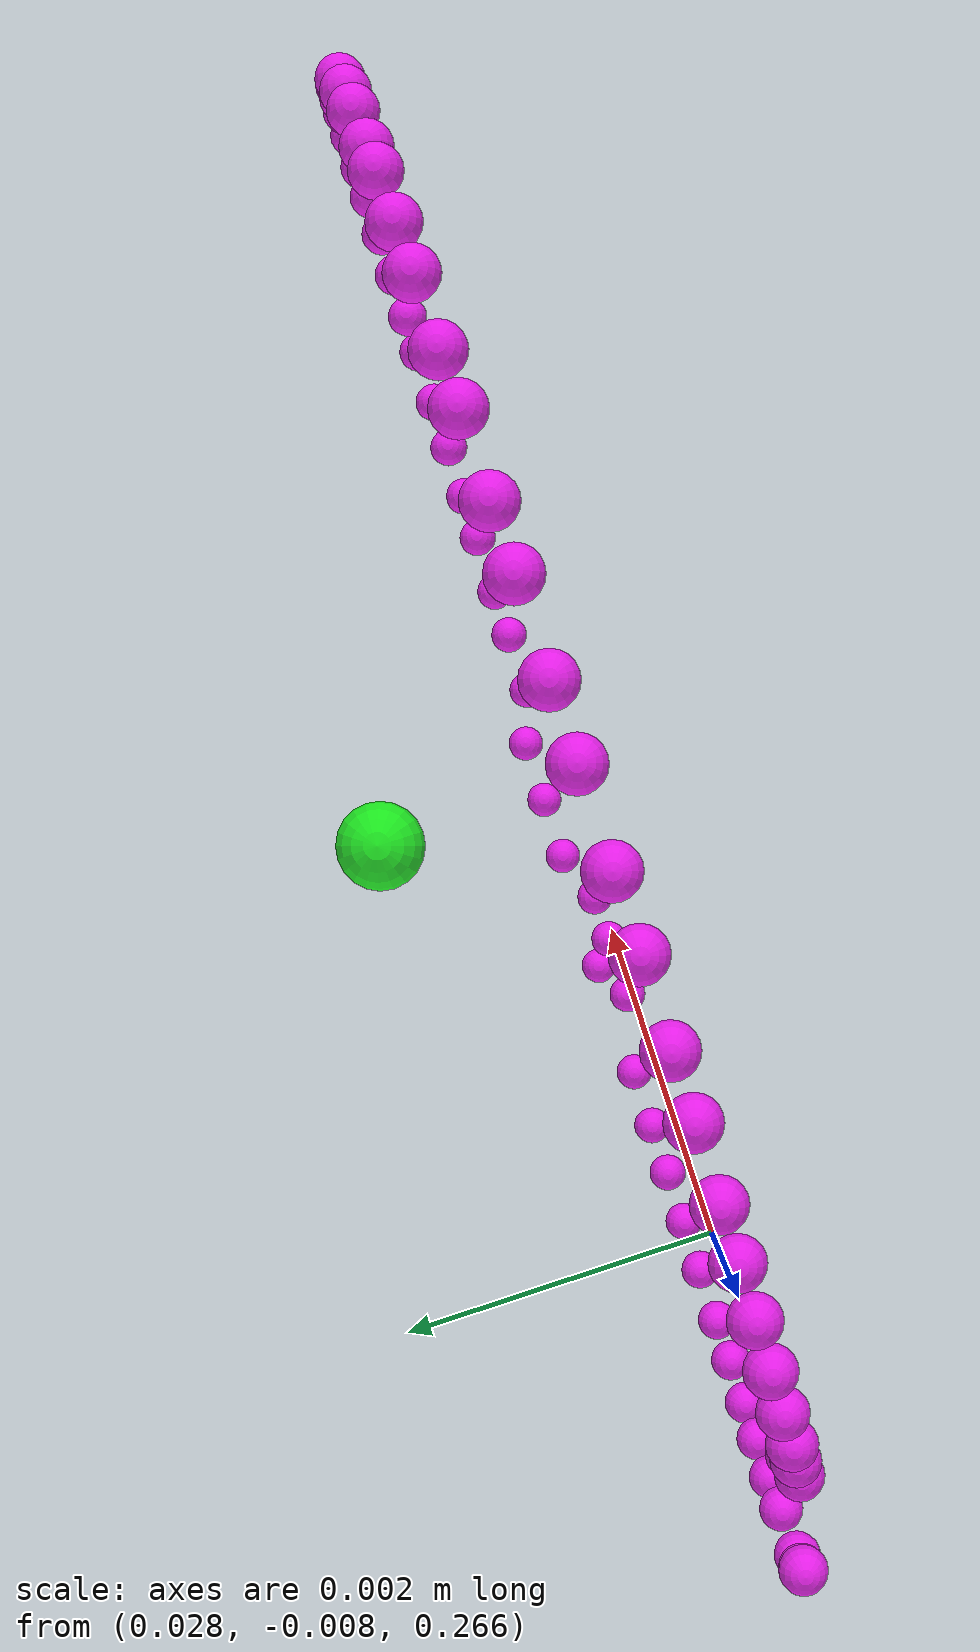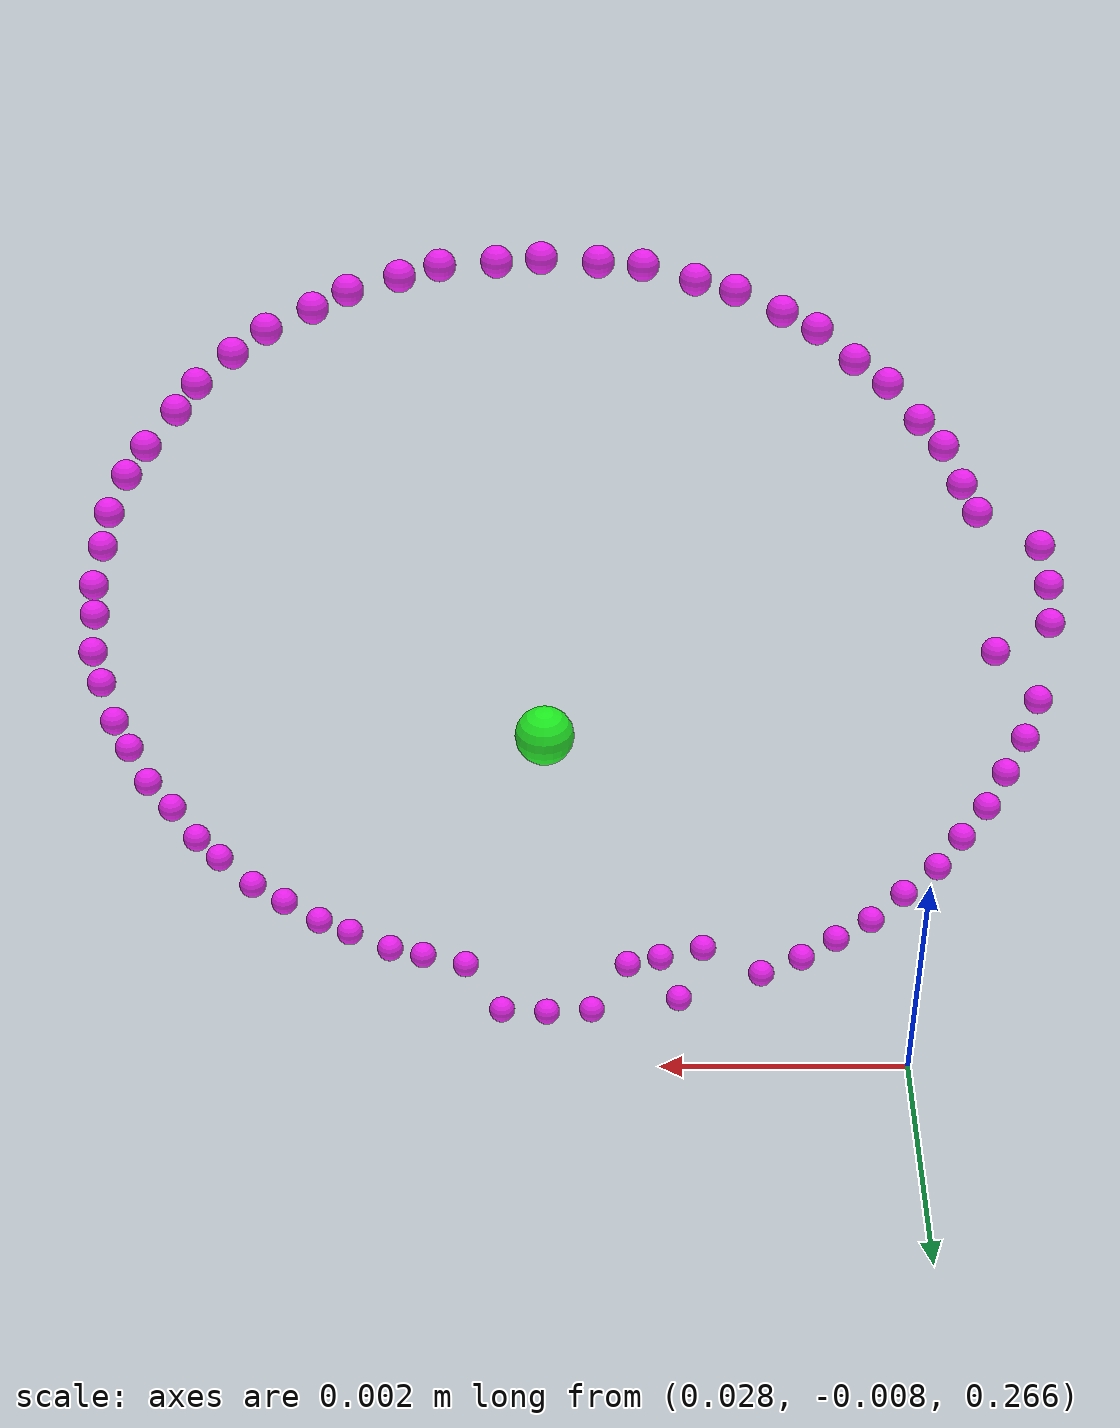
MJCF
<mujoco>
  <worldbody>
    <!-- LENS VISUALIZATION - PROJECTED TRAJECTORY ONLY -->
    <!-- Lens geometric center -->
    <body name="lens_center_marker" pos="0.030893 -0.007080 0.270276">
      <geom name="lens_center_sphere" type="sphere" size="0.0002" rgba="0 1 0 0.8" contype="0" conaffinity="0"/>
    </body>

    <!-- Projected trajectory points (100 points) -->
    <body name="trajectory_point_0" pos="0.030900 -0.007950 0.273375">
      <geom name="traj_marker_0" type="sphere" size="0.0001" rgba="1 0 1 0.8" contype="0" conaffinity="0"/>
    </body>
    <body name="trajectory_point_1" pos="0.031175 -0.007950 0.273350">
      <geom name="traj_marker_1" type="sphere" size="0.0001" rgba="1 0 1 0.8" contype="0" conaffinity="0"/>
    </body>
    <body name="trajectory_point_2" pos="0.031175 -0.007950 0.273350">
      <geom name="traj_marker_2" type="sphere" size="0.0001" rgba="1 0 1 0.8" contype="0" conaffinity="0"/>
    </body>
    <body name="trajectory_point_3" pos="0.031525 -0.007950 0.273325">
      <geom name="traj_marker_3" type="sphere" size="0.0001" rgba="1 0 1 0.8" contype="0" conaffinity="0"/>
    </body>
    <body name="trajectory_point_4" pos="0.031775 -0.007950 0.273250">
      <geom name="traj_marker_4" type="sphere" size="0.0001" rgba="1 0 1 0.8" contype="0" conaffinity="0"/>
    </body>
    <body name="trajectory_point_5" pos="0.031775 -0.007950 0.273250">
      <geom name="traj_marker_5" type="sphere" size="0.0001" rgba="1 0 1 0.8" contype="0" conaffinity="0"/>
    </body>
    <body name="trajectory_point_6" pos="0.032100 -0.007950 0.273150">
      <geom name="traj_marker_6" type="sphere" size="0.0001" rgba="1 0 1 0.8" contype="0" conaffinity="0"/>
    </body>
    <body name="trajectory_point_7" pos="0.032325 -0.007950 0.273025">
      <geom name="traj_marker_7" type="sphere" size="0.0001" rgba="1 0 1 0.8" contype="0" conaffinity="0"/>
    </body>
    <body name="trajectory_point_8" pos="0.032325 -0.007950 0.273025">
      <geom name="traj_marker_8" type="sphere" size="0.0001" rgba="1 0 1 0.8" contype="0" conaffinity="0"/>
    </body>
    <body name="trajectory_point_9" pos="0.032625 -0.007950 0.272875">
      <geom name="traj_marker_9" type="sphere" size="0.0001" rgba="1 0 1 0.8" contype="0" conaffinity="0"/>
    </body>
    <body name="trajectory_point_10" pos="0.032850 -0.007950 0.272700">
      <geom name="traj_marker_10" type="sphere" size="0.0001" rgba="1 0 1 0.8" contype="0" conaffinity="0"/>
    </body>
    <body name="trajectory_point_11" pos="0.032850 -0.007950 0.272700">
      <geom name="traj_marker_11" type="sphere" size="0.0001" rgba="1 0 1 0.8" contype="0" conaffinity="0"/>
    </body>
    <body name="trajectory_point_12" pos="0.033100 -0.007950 0.272475">
      <geom name="traj_marker_12" type="sphere" size="0.0001" rgba="1 0 1 0.8" contype="0" conaffinity="0"/>
    </body>
    <body name="trajectory_point_13" pos="0.033250 -0.007950 0.272275">
      <geom name="traj_marker_13" type="sphere" size="0.0001" rgba="1 0 1 0.8" contype="0" conaffinity="0"/>
    </body>
    <body name="trajectory_point_14" pos="0.033250 -0.007950 0.272275">
      <geom name="traj_marker_14" type="sphere" size="0.0001" rgba="1 0 1 0.8" contype="0" conaffinity="0"/>
    </body>
    <body name="trajectory_point_15" pos="0.033475 -0.007950 0.272000">
      <geom name="traj_marker_15" type="sphere" size="0.0001" rgba="1 0 1 0.8" contype="0" conaffinity="0"/>
    </body>
    <body name="trajectory_point_16" pos="0.033475 -0.007950 0.272000">
      <geom name="traj_marker_16" type="sphere" size="0.0001" rgba="1 0 1 0.8" contype="0" conaffinity="0"/>
    </body>
    <body name="trajectory_point_17" pos="0.033625 -0.007950 0.271775">
      <geom name="traj_marker_17" type="sphere" size="0.0001" rgba="1 0 1 0.8" contype="0" conaffinity="0"/>
    </body>
    <body name="trajectory_point_18" pos="0.033775 -0.007950 0.271475">
      <geom name="traj_marker_18" type="sphere" size="0.0001" rgba="1 0 1 0.8" contype="0" conaffinity="0"/>
    </body>
    <body name="trajectory_point_19" pos="0.033775 -0.007950 0.271475">
      <geom name="traj_marker_19" type="sphere" size="0.0001" rgba="1 0 1 0.8" contype="0" conaffinity="0"/>
    </body>
    <body name="trajectory_point_20" pos="0.033850 -0.007950 0.271200">
      <geom name="traj_marker_20" type="sphere" size="0.0001" rgba="1 0 1 0.8" contype="0" conaffinity="0"/>
    </body>
    <body name="trajectory_point_21" pos="0.033950 -0.007950 0.270875">
      <geom name="traj_marker_21" type="sphere" size="0.0001" rgba="1 0 1 0.8" contype="0" conaffinity="0"/>
    </body>
    <body name="trajectory_point_22" pos="0.033950 -0.007950 0.270875">
      <geom name="traj_marker_22" type="sphere" size="0.0001" rgba="1 0 1 0.8" contype="0" conaffinity="0"/>
    </body>
    <body name="trajectory_point_23" pos="0.033975 -0.007950 0.270625">
      <geom name="traj_marker_23" type="sphere" size="0.0001" rgba="1 0 1 0.8" contype="0" conaffinity="0"/>
    </body>
    <body name="trajectory_point_24" pos="0.034025 -0.007950 0.270300">
      <geom name="traj_marker_24" type="sphere" size="0.0001" rgba="1 0 1 0.8" contype="0" conaffinity="0"/>
    </body>
    <body name="trajectory_point_25" pos="0.034025 -0.007950 0.270300">
      <geom name="traj_marker_25" type="sphere" size="0.0001" rgba="1 0 1 0.8" contype="0" conaffinity="0"/>
    </body>
    <body name="trajectory_point_26" pos="0.034000 -0.007950 0.270025">
      <geom name="traj_marker_26" type="sphere" size="0.0001" rgba="1 0 1 0.8" contype="0" conaffinity="0"/>
    </body>
    <body name="trajectory_point_27" pos="0.033950 -0.007950 0.269675">
      <geom name="traj_marker_27" type="sphere" size="0.0001" rgba="1 0 1 0.8" contype="0" conaffinity="0"/>
    </body>
    <body name="trajectory_point_28" pos="0.033950 -0.007950 0.269675">
      <geom name="traj_marker_28" type="sphere" size="0.0001" rgba="1 0 1 0.8" contype="0" conaffinity="0"/>
    </body>
    <body name="trajectory_point_29" pos="0.033875 -0.007950 0.269425">
      <geom name="traj_marker_29" type="sphere" size="0.0001" rgba="1 0 1 0.8" contype="0" conaffinity="0"/>
    </body>
    <body name="trajectory_point_30" pos="0.033875 -0.007950 0.269425">
      <geom name="traj_marker_30" type="sphere" size="0.0001" rgba="1 0 1 0.8" contype="0" conaffinity="0"/>
    </body>
    <body name="trajectory_point_31" pos="0.033775 -0.007950 0.269100">
      <geom name="traj_marker_31" type="sphere" size="0.0001" rgba="1 0 1 0.8" contype="0" conaffinity="0"/>
    </body>
    <body name="trajectory_point_32" pos="0.033625 -0.007950 0.268850">
      <geom name="traj_marker_32" type="sphere" size="0.0001" rgba="1 0 1 0.8" contype="0" conaffinity="0"/>
    </body>
    <body name="trajectory_point_33" pos="0.033625 -0.007950 0.268850">
      <geom name="traj_marker_33" type="sphere" size="0.0001" rgba="1 0 1 0.8" contype="0" conaffinity="0"/>
    </body>
    <body name="trajectory_point_34" pos="0.033475 -0.007950 0.268550">
      <geom name="traj_marker_34" type="sphere" size="0.0001" rgba="1 0 1 0.8" contype="0" conaffinity="0"/>
    </body>
    <body name="trajectory_point_35" pos="0.033325 -0.007950 0.268350">
      <geom name="traj_marker_35" type="sphere" size="0.0001" rgba="1 0 1 0.8" contype="0" conaffinity="0"/>
    </body>
    <body name="trajectory_point_36" pos="0.033325 -0.007950 0.268350">
      <geom name="traj_marker_36" type="sphere" size="0.0001" rgba="1 0 1 0.8" contype="0" conaffinity="0"/>
    </body>
    <body name="trajectory_point_37" pos="0.033100 -0.007950 0.268075">
      <geom name="traj_marker_37" type="sphere" size="0.0001" rgba="1 0 1 0.8" contype="0" conaffinity="0"/>
    </body>
    <body name="trajectory_point_38" pos="0.033100 -0.007950 0.268075">
      <geom name="traj_marker_38" type="sphere" size="0.0001" rgba="1 0 1 0.8" contype="0" conaffinity="0"/>
    </body>
    <body name="trajectory_point_39" pos="0.032875 -0.007950 0.267900">
      <geom name="traj_marker_39" type="sphere" size="0.0001" rgba="1 0 1 0.8" contype="0" conaffinity="0"/>
    </body>
    <body name="trajectory_point_40" pos="0.032625 -0.007950 0.267700">
      <geom name="traj_marker_40" type="sphere" size="0.0001" rgba="1 0 1 0.8" contype="0" conaffinity="0"/>
    </body>
    <body name="trajectory_point_41" pos="0.032625 -0.007950 0.267700">
      <geom name="traj_marker_41" type="sphere" size="0.0001" rgba="1 0 1 0.8" contype="0" conaffinity="0"/>
    </body>
    <body name="trajectory_point_42" pos="0.032400 -0.007950 0.267575">
      <geom name="traj_marker_42" type="sphere" size="0.0001" rgba="1 0 1 0.8" contype="0" conaffinity="0"/>
    </body>
    <body name="trajectory_point_43" pos="0.032100 -0.007950 0.267400">
      <geom name="traj_marker_43" type="sphere" size="0.0001" rgba="1 0 1 0.8" contype="0" conaffinity="0"/>
    </body>
    <body name="trajectory_point_44" pos="0.032100 -0.007950 0.267400">
      <geom name="traj_marker_44" type="sphere" size="0.0001" rgba="1 0 1 0.8" contype="0" conaffinity="0"/>
    </body>
    <body name="trajectory_point_45" pos="0.031850 -0.007950 0.267325">
      <geom name="traj_marker_45" type="sphere" size="0.0001" rgba="1 0 1 0.8" contype="0" conaffinity="0"/>
    </body>
    <body name="trajectory_point_46" pos="0.031525 -0.007950 0.267225">
      <geom name="traj_marker_46" type="sphere" size="0.0001" rgba="1 0 1 0.8" contype="0" conaffinity="0"/>
    </body>
    <body name="trajectory_point_47" pos="0.031525 -0.007950 0.267225">
      <geom name="traj_marker_47" type="sphere" size="0.0001" rgba="1 0 1 0.8" contype="0" conaffinity="0"/>
    </body>
    <body name="trajectory_point_48" pos="0.031250 -0.007850 0.266825">
      <geom name="traj_marker_48" type="sphere" size="0.0001" rgba="1 0 1 0.8" contype="0" conaffinity="0"/>
    </body>
    <body name="trajectory_point_49" pos="0.031250 -0.007850 0.266825">
      <geom name="traj_marker_49" type="sphere" size="0.0001" rgba="1 0 1 0.8" contype="0" conaffinity="0"/>
    </body>
    <body name="trajectory_point_50" pos="0.030900 -0.007850 0.266800">
      <geom name="traj_marker_50" type="sphere" size="0.0001" rgba="1 0 1 0.8" contype="0" conaffinity="0"/>
    </body>
    <body name="trajectory_point_51" pos="0.030550 -0.007850 0.266825">
      <geom name="traj_marker_51" type="sphere" size="0.0001" rgba="1 0 1 0.8" contype="0" conaffinity="0"/>
    </body>
    <body name="trajectory_point_52" pos="0.030550 -0.007850 0.266825">
      <geom name="traj_marker_52" type="sphere" size="0.0001" rgba="1 0 1 0.8" contype="0" conaffinity="0"/>
    </body>
    <body name="trajectory_point_53" pos="0.030275 -0.007950 0.267225">
      <geom name="traj_marker_53" type="sphere" size="0.0001" rgba="1 0 1 0.8" contype="0" conaffinity="0"/>
    </body>
    <body name="trajectory_point_54" pos="0.030025 -0.007950 0.267300">
      <geom name="traj_marker_54" type="sphere" size="0.0001" rgba="1 0 1 0.8" contype="0" conaffinity="0"/>
    </body>
    <body name="trajectory_point_55" pos="0.029875 -0.007850 0.266950">
      <geom name="traj_marker_55" type="sphere" size="0.0001" rgba="1 0 1 0.8" contype="0" conaffinity="0"/>
    </body>
    <body name="trajectory_point_56" pos="0.029700 -0.007950 0.267400">
      <geom name="traj_marker_56" type="sphere" size="0.0001" rgba="1 0 1 0.8" contype="0" conaffinity="0"/>
    </body>
    <body name="trajectory_point_57" pos="0.029250 -0.007850 0.267225">
      <geom name="traj_marker_57" type="sphere" size="0.0001" rgba="1 0 1 0.8" contype="0" conaffinity="0"/>
    </body>
    <body name="trajectory_point_58" pos="0.029250 -0.007850 0.267225">
      <geom name="traj_marker_58" type="sphere" size="0.0001" rgba="1 0 1 0.8" contype="0" conaffinity="0"/>
    </body>
    <body name="trajectory_point_59" pos="0.028950 -0.007850 0.267400">
      <geom name="traj_marker_59" type="sphere" size="0.0001" rgba="1 0 1 0.8" contype="0" conaffinity="0"/>
    </body>
    <body name="trajectory_point_60" pos="0.028700 -0.007850 0.267600">
      <geom name="traj_marker_60" type="sphere" size="0.0001" rgba="1 0 1 0.8" contype="0" conaffinity="0"/>
    </body>
    <body name="trajectory_point_61" pos="0.028700 -0.007850 0.267600">
      <geom name="traj_marker_61" type="sphere" size="0.0001" rgba="1 0 1 0.8" contype="0" conaffinity="0"/>
    </body>
    <body name="trajectory_point_62" pos="0.028450 -0.007850 0.267800">
      <geom name="traj_marker_62" type="sphere" size="0.0001" rgba="1 0 1 0.8" contype="0" conaffinity="0"/>
    </body>
    <body name="trajectory_point_63" pos="0.028225 -0.007850 0.268075">
      <geom name="traj_marker_63" type="sphere" size="0.0001" rgba="1 0 1 0.8" contype="0" conaffinity="0"/>
    </body>
    <body name="trajectory_point_64" pos="0.028225 -0.007850 0.268075">
      <geom name="traj_marker_64" type="sphere" size="0.0001" rgba="1 0 1 0.8" contype="0" conaffinity="0"/>
    </body>
    <body name="trajectory_point_65" pos="0.028000 -0.007850 0.268350">
      <geom name="traj_marker_65" type="sphere" size="0.0001" rgba="1 0 1 0.8" contype="0" conaffinity="0"/>
    </body>
    <body name="trajectory_point_66" pos="0.028000 -0.007850 0.268350">
      <geom name="traj_marker_66" type="sphere" size="0.0001" rgba="1 0 1 0.8" contype="0" conaffinity="0"/>
    </body>
    <body name="trajectory_point_67" pos="0.027850 -0.007850 0.268650">
      <geom name="traj_marker_67" type="sphere" size="0.0001" rgba="1 0 1 0.8" contype="0" conaffinity="0"/>
    </body>
    <body name="trajectory_point_68" pos="0.027700 -0.007850 0.268950">
      <geom name="traj_marker_68" type="sphere" size="0.0001" rgba="1 0 1 0.8" contype="0" conaffinity="0"/>
    </body>
    <body name="trajectory_point_69" pos="0.027700 -0.007850 0.268950">
      <geom name="traj_marker_69" type="sphere" size="0.0001" rgba="1 0 1 0.8" contype="0" conaffinity="0"/>
    </body>
    <body name="trajectory_point_70" pos="0.027600 -0.007850 0.269275">
      <geom name="traj_marker_70" type="sphere" size="0.0001" rgba="1 0 1 0.8" contype="0" conaffinity="0"/>
    </body>
    <body name="trajectory_point_71" pos="0.027600 -0.007850 0.269275">
      <geom name="traj_marker_71" type="sphere" size="0.0001" rgba="1 0 1 0.8" contype="0" conaffinity="0"/>
    </body>
    <body name="trajectory_point_72" pos="0.027500 -0.007850 0.269600">
      <geom name="traj_marker_72" type="sphere" size="0.0001" rgba="1 0 1 0.8" contype="0" conaffinity="0"/>
    </body>
    <body name="trajectory_point_73" pos="0.027450 -0.007850 0.269950">
      <geom name="traj_marker_73" type="sphere" size="0.0001" rgba="1 0 1 0.8" contype="0" conaffinity="0"/>
    </body>
    <body name="trajectory_point_74" pos="0.027450 -0.007850 0.269950">
      <geom name="traj_marker_74" type="sphere" size="0.0001" rgba="1 0 1 0.8" contype="0" conaffinity="0"/>
    </body>
    <body name="trajectory_point_75" pos="0.027775 -0.007950 0.270300">
      <geom name="traj_marker_75" type="sphere" size="0.0001" rgba="1 0 1 0.8" contype="0" conaffinity="0"/>
    </body>
    <body name="trajectory_point_76" pos="0.027450 -0.007850 0.270625">
      <geom name="traj_marker_76" type="sphere" size="0.0001" rgba="1 0 1 0.8" contype="0" conaffinity="0"/>
    </body>
    <body name="trajectory_point_77" pos="0.027450 -0.007850 0.270625">
      <geom name="traj_marker_77" type="sphere" size="0.0001" rgba="1 0 1 0.8" contype="0" conaffinity="0"/>
    </body>
    <body name="trajectory_point_78" pos="0.027500 -0.007850 0.270950">
      <geom name="traj_marker_78" type="sphere" size="0.0001" rgba="1 0 1 0.8" contype="0" conaffinity="0"/>
    </body>
    <body name="trajectory_point_79" pos="0.027600 -0.007850 0.271275">
      <geom name="traj_marker_79" type="sphere" size="0.0001" rgba="1 0 1 0.8" contype="0" conaffinity="0"/>
    </body>
    <body name="trajectory_point_80" pos="0.027600 -0.007850 0.271275">
      <geom name="traj_marker_80" type="sphere" size="0.0001" rgba="1 0 1 0.8" contype="0" conaffinity="0"/>
    </body>
    <body name="trajectory_point_81" pos="0.028025 -0.007950 0.271475">
      <geom name="traj_marker_81" type="sphere" size="0.0001" rgba="1 0 1 0.8" contype="0" conaffinity="0"/>
    </body>
    <body name="trajectory_point_82" pos="0.028150 -0.007950 0.271700">
      <geom name="traj_marker_82" type="sphere" size="0.0001" rgba="1 0 1 0.8" contype="0" conaffinity="0"/>
    </body>
    <body name="trajectory_point_83" pos="0.028150 -0.007950 0.271700">
      <geom name="traj_marker_83" type="sphere" size="0.0001" rgba="1 0 1 0.8" contype="0" conaffinity="0"/>
    </body>
    <body name="trajectory_point_84" pos="0.028300 -0.007950 0.272000">
      <geom name="traj_marker_84" type="sphere" size="0.0001" rgba="1 0 1 0.8" contype="0" conaffinity="0"/>
    </body>
    <body name="trajectory_point_85" pos="0.028475 -0.007950 0.272200">
      <geom name="traj_marker_85" type="sphere" size="0.0001" rgba="1 0 1 0.8" contype="0" conaffinity="0"/>
    </body>
    <body name="trajectory_point_86" pos="0.028475 -0.007950 0.272200">
      <geom name="traj_marker_86" type="sphere" size="0.0001" rgba="1 0 1 0.8" contype="0" conaffinity="0"/>
    </body>
    <body name="trajectory_point_87" pos="0.028700 -0.007950 0.272475">
      <geom name="traj_marker_87" type="sphere" size="0.0001" rgba="1 0 1 0.8" contype="0" conaffinity="0"/>
    </body>
    <body name="trajectory_point_88" pos="0.028700 -0.007950 0.272475">
      <geom name="traj_marker_88" type="sphere" size="0.0001" rgba="1 0 1 0.8" contype="0" conaffinity="0"/>
    </body>
    <body name="trajectory_point_89" pos="0.028925 -0.007950 0.272650">
      <geom name="traj_marker_89" type="sphere" size="0.0001" rgba="1 0 1 0.8" contype="0" conaffinity="0"/>
    </body>
    <body name="trajectory_point_90" pos="0.029175 -0.007950 0.272875">
      <geom name="traj_marker_90" type="sphere" size="0.0001" rgba="1 0 1 0.8" contype="0" conaffinity="0"/>
    </body>
    <body name="trajectory_point_91" pos="0.029175 -0.007950 0.272875">
      <geom name="traj_marker_91" type="sphere" size="0.0001" rgba="1 0 1 0.8" contype="0" conaffinity="0"/>
    </body>
    <body name="trajectory_point_92" pos="0.029400 -0.007950 0.273000">
      <geom name="traj_marker_92" type="sphere" size="0.0001" rgba="1 0 1 0.8" contype="0" conaffinity="0"/>
    </body>
    <body name="trajectory_point_93" pos="0.029700 -0.007950 0.273150">
      <geom name="traj_marker_93" type="sphere" size="0.0001" rgba="1 0 1 0.8" contype="0" conaffinity="0"/>
    </body>
    <body name="trajectory_point_94" pos="0.029700 -0.007950 0.273150">
      <geom name="traj_marker_94" type="sphere" size="0.0001" rgba="1 0 1 0.8" contype="0" conaffinity="0"/>
    </body>
    <body name="trajectory_point_95" pos="0.029950 -0.007950 0.273225">
      <geom name="traj_marker_95" type="sphere" size="0.0001" rgba="1 0 1 0.8" contype="0" conaffinity="0"/>
    </body>
    <body name="trajectory_point_96" pos="0.030275 -0.007950 0.273325">
      <geom name="traj_marker_96" type="sphere" size="0.0001" rgba="1 0 1 0.8" contype="0" conaffinity="0"/>
    </body>
    <body name="trajectory_point_97" pos="0.030275 -0.007950 0.273325">
      <geom name="traj_marker_97" type="sphere" size="0.0001" rgba="1 0 1 0.8" contype="0" conaffinity="0"/>
    </body>
    <body name="trajectory_point_98" pos="0.030550 -0.007950 0.273350">
      <geom name="traj_marker_98" type="sphere" size="0.0001" rgba="1 0 1 0.8" contype="0" conaffinity="0"/>
    </body>
    <body name="trajectory_point_99" pos="0.030550 -0.007950 0.273350">
      <geom name="traj_marker_99" type="sphere" size="0.0001" rgba="1 0 1 0.8" contype="0" conaffinity="0"/>
    </body>
  </worldbody>
</mujoco>
